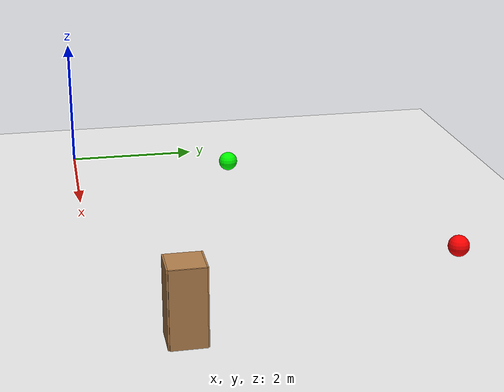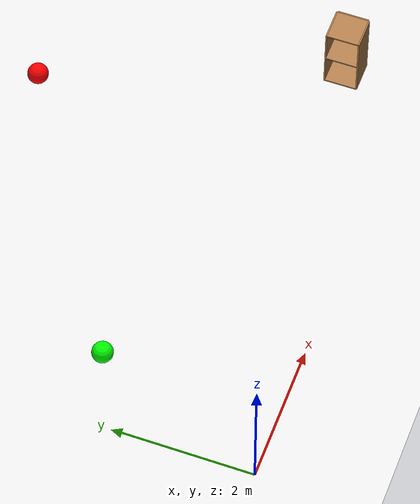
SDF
<sdf version="1.4">
 <world name="default">
  <model name="ground_plane_0">
   <static>1</static>
   <link name="link">
    <collision name="collision">
     <geometry><plane><normal>0 0 1</normal><size>100 100</size></plane></geometry>
     <surface><friction><ode><mu>100</mu><mu2>50</mu2></ode></friction></surface>
    </collision>
    <visual name="visual">
     <cast_shadows>0</cast_shadows>
     <geometry><plane><normal>0 0 1</normal><size>100 100</size></plane></geometry>
     <material>
      <script><uri>file://media/materials/scripts/gazebo.material</uri><name>Gazebo/White</name></script>
     </material>
    </visual>
    <velocity_decay><linear>0</linear><angular>0</angular></velocity_decay>
   </link>
   <pose>0.497681 0 0 0 -0 0</pose>
  </model>
  <model name="unit_sphere_1">
   <static>1</static>
   <pose>5 5 0.15 0 -0 0</pose>
   <link name="link">
    <inertial>
     <mass>1</mass>
     <inertia><ixx>1</ixx><ixy>0</ixy><ixz>0</ixz><iyy>1</iyy><iyz>0</iyz><izz>1</izz></inertia>
    </inertial>
    <collision name="collision"><geometry><sphere><radius>0.15</radius></sphere></geometry></collision>
    <visual name="visual">
     <material>
      <ambient>1 0 0 1</ambient>
      <diffuse>1 0 0 1</diffuse>
      <specular>0.1 0.1 0.1 1</specular>
      <emissive>0 0 0 0</emissive>
     </material>
     <geometry><sphere><radius>0.15</radius></sphere></geometry>
     <material>
      <script><uri>file://media/materials/scripts/gazebo.material</uri><name>Gazebo/White</name></script>
     </material>
    </visual>
    <velocity_decay><linear>0</linear><angular>0</angular></velocity_decay>
   </link>
  </model>
  <model name="unit_sphere_2">
   <static>1</static>
   <pose>1 2.5 0.15 0 -0 0</pose>
   <link name="link">
    <inertial>
     <mass>1</mass>
     <inertia><ixx>1</ixx><ixy>0</ixy><ixz>0</ixz><iyy>1</iyy><iyz>0</iyz><izz>1</izz></inertia>
    </inertial>
    <collision name="collision"><geometry><sphere><radius>0.15</radius></sphere></geometry></collision>
    <visual name="visual">
     <material>
      <ambient>0 1 0 1</ambient>
      <diffuse>0 1 0 1</diffuse>
      <specular>0.1 0.1 0.1 1</specular>
      <emissive>0 0 0 0</emissive>
     </material>
     <geometry><sphere><radius>0.15</radius></sphere></geometry>
     <material>
      <script><uri>file://media/materials/scripts/gazebo.material</uri><name>Gazebo/White</name></script>
     </material>
    </visual>
    <velocity_decay><linear>0</linear><angular>0</angular></velocity_decay>
   </link>
  </model>
  <model name="cabinet">
   <static>0</static>
   <link name="cabinet_bottom_plate">
    <inertial>
     <pose>0 0 -1 0 -0 0</pose>
     <inertia><ixx>2.05</ixx><ixy>0</ixy><ixz>0</ixz><iyy>2.05</iyy><iyz>0</iyz><izz>2.05</izz></inertia>
     <mass>25</mass>
    </inertial>
    <collision name="cabinet_bottom_plate_geom">
     <pose>0 0 0.01 0 -0 0</pose>
     <geometry><box><size>0.45 0.45 0.02</size></box></geometry>
    </collision>
    <visual name="cabinet_bottom_plate_geom_visual">
     <pose>0 0 0.01 0 -0 0</pose>
     <geometry><box><size>0.45 0.45 0.02</size></box></geometry>
     <material>
      <script><uri>file://media/materials/scripts/gazebo.material</uri><name>Gazebo/Wood</name></script>
     </material>
    </visual>
    <collision name="cabinet_bottom_plate_geom_cabinet_back_plate">
     <pose>0.235 0 0.51 0 -0 0</pose>
     <geometry><box><size>0.02 0.45 1.02</size></box></geometry>
    </collision>
    <visual name="cabinet_bottom_plate_geom_cabinet_back_plate_visual">
     <pose>0.235 0 0.51 0 -0 0</pose>
     <geometry><box><size>0.02 0.45 1.02</size></box></geometry>
     <material>
      <script><uri>file://media/materials/scripts/gazebo.material</uri><name>Gazebo/Wood</name></script>
     </material>
    </visual>
    <collision name="cabinet_bottom_plate_geom_cabinet_left_plate">
     <pose>0 0.235 0.51 0 -0 0</pose>
     <geometry><box><size>0.45 0.02 1.02</size></box></geometry>
    </collision>
    <visual name="cabinet_bottom_plate_geom_cabinet_left_plate_visual">
     <pose>0 0.235 0.51 0 -0 0</pose>
     <geometry><box><size>0.45 0.02 1.02</size></box></geometry>
     <material>
      <script><uri>file://media/materials/scripts/gazebo.material</uri><name>Gazebo/Wood</name></script>
     </material>
    </visual>
    <collision name="cabinet_bottom_plate_geom_cabinet_middle_plate">
     <pose>0 0 0.51 0 -0 0</pose>
     <geometry><box><size>0.45 0.45 0.02</size></box></geometry>
    </collision>
    <visual name="cabinet_bottom_plate_geom_cabinet_middle_plate_visual">
     <pose>0 0 0.51 0 -0 0</pose>
     <geometry><box><size>0.45 0.45 0.02</size></box></geometry>
     <material>
      <script><uri>file://media/materials/scripts/gazebo.material</uri><name>Gazebo/Wood</name></script>
     </material>
    </visual>
    <collision name="cabinet_bottom_plate_geom_cabinet_right_plate">
     <pose>0 -0.235 0.51 0 -0 0</pose>
     <geometry><box><size>0.45 0.02 1.02</size></box></geometry>
    </collision>
    <visual name="cabinet_bottom_plate_geom_cabinet_right_plate_visual">
     <pose>0 -0.235 0.51 0 -0 0</pose>
     <geometry><box><size>0.45 0.02 1.02</size></box></geometry>
     <material>
      <script><uri>file://media/materials/scripts/gazebo.material</uri><name>Gazebo/Wood</name></script>
     </material>
    </visual>
    <collision name="cabinet_bottom_plate_geom_cabinet_top_plate">
     <pose>0 0 1.01 0 -0 0</pose>
     <geometry><box><size>0.45 0.45 0.02</size></box></geometry>
    </collision>
    <visual name="cabinet_bottom_plate_geom_cabinet_top_plate_visual">
     <pose>0 0 1.01 0 -0 0</pose>
     <geometry><box><size>0.45 0.45 0.02</size></box></geometry>
     <material>
      <script><uri>file://media/materials/scripts/gazebo.material</uri><name>Gazebo/Wood</name></script>
     </material>
    </visual>
    <velocity_decay><linear>0</linear><angular>0</angular></velocity_decay>
   </link>
   <pose>6.59201 1 0 0 -0 0</pose>
  </model>
 </world>
</sdf>
